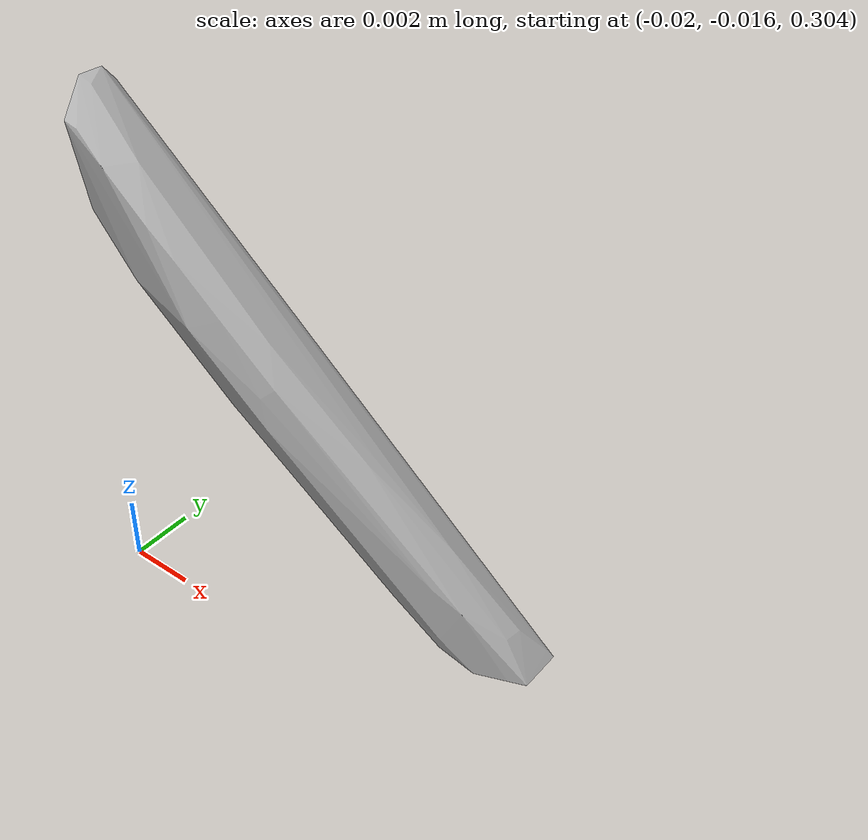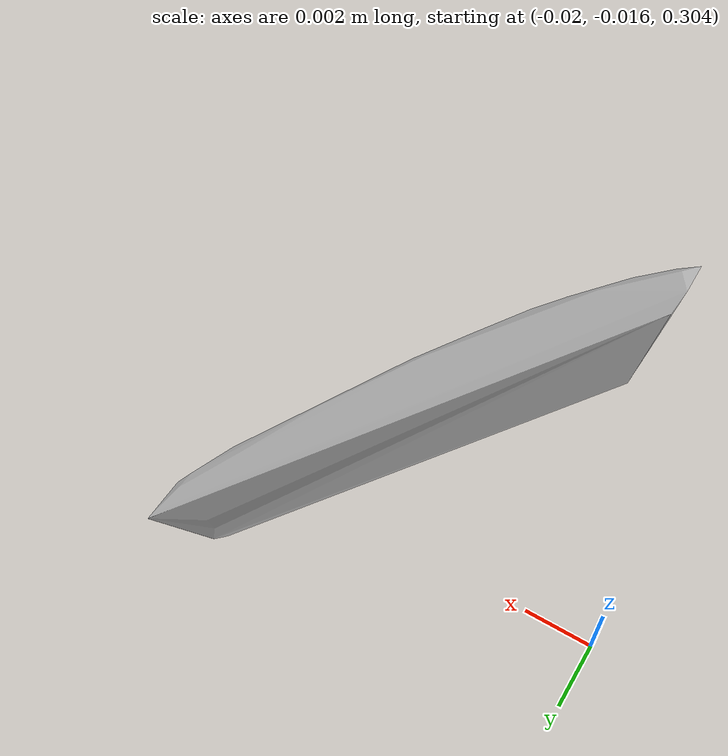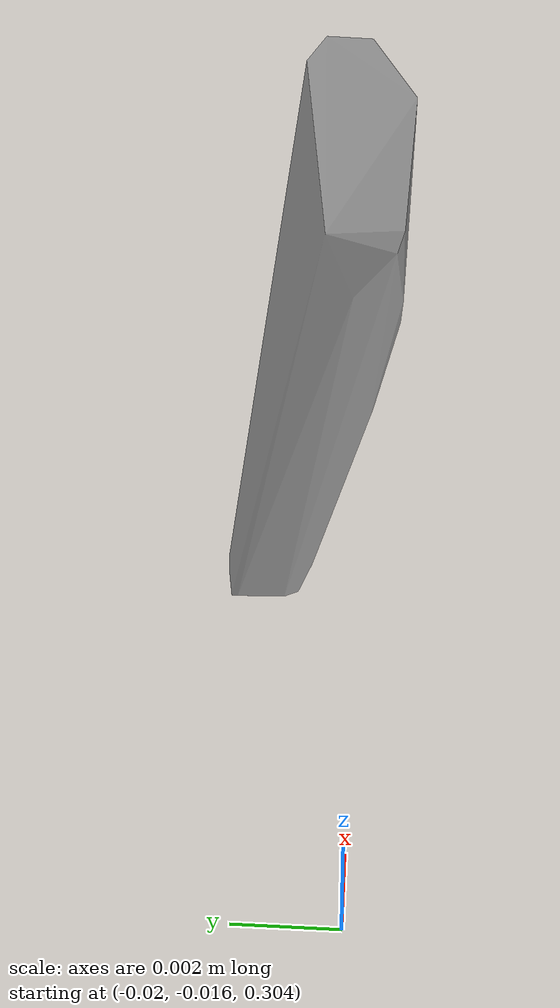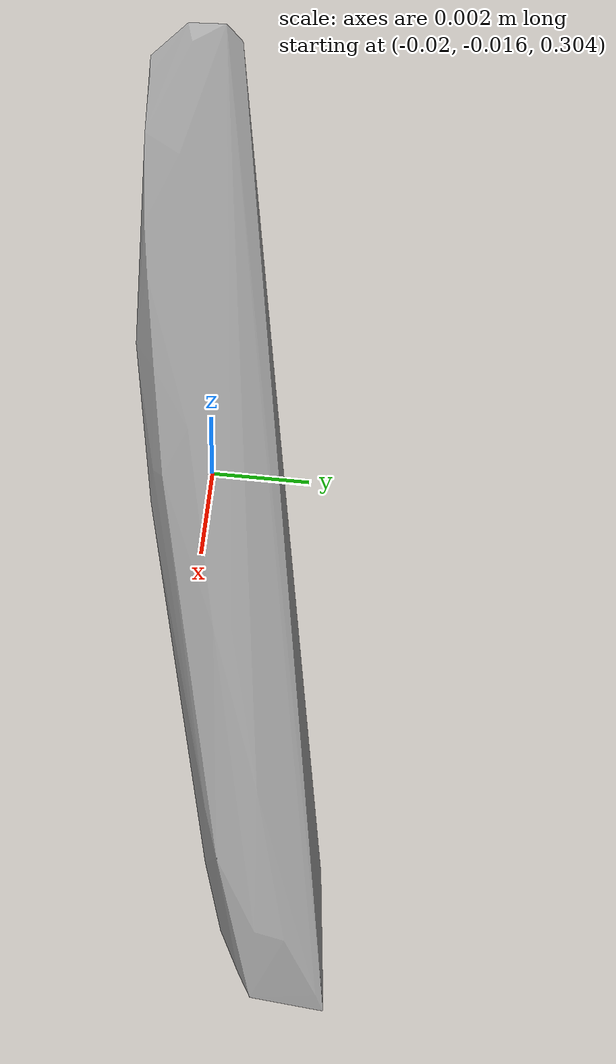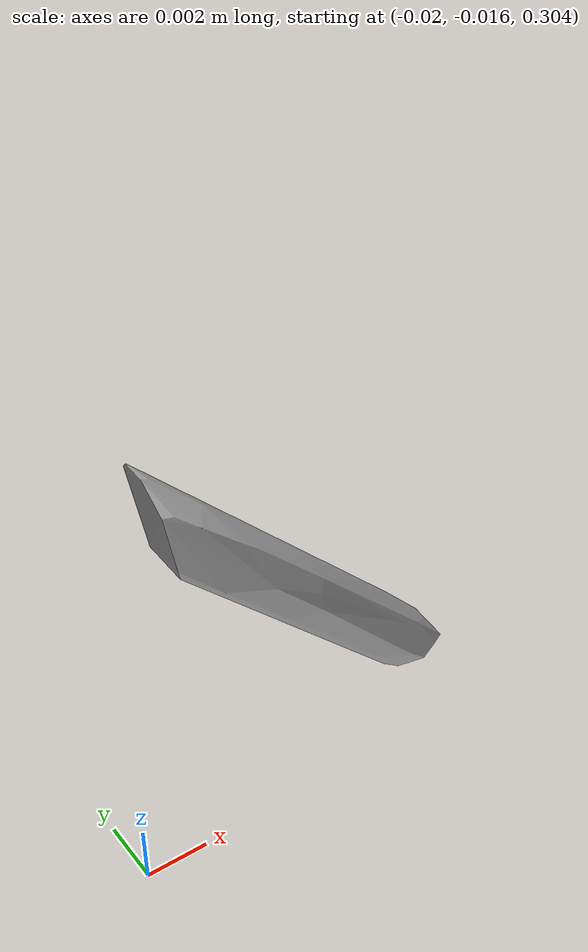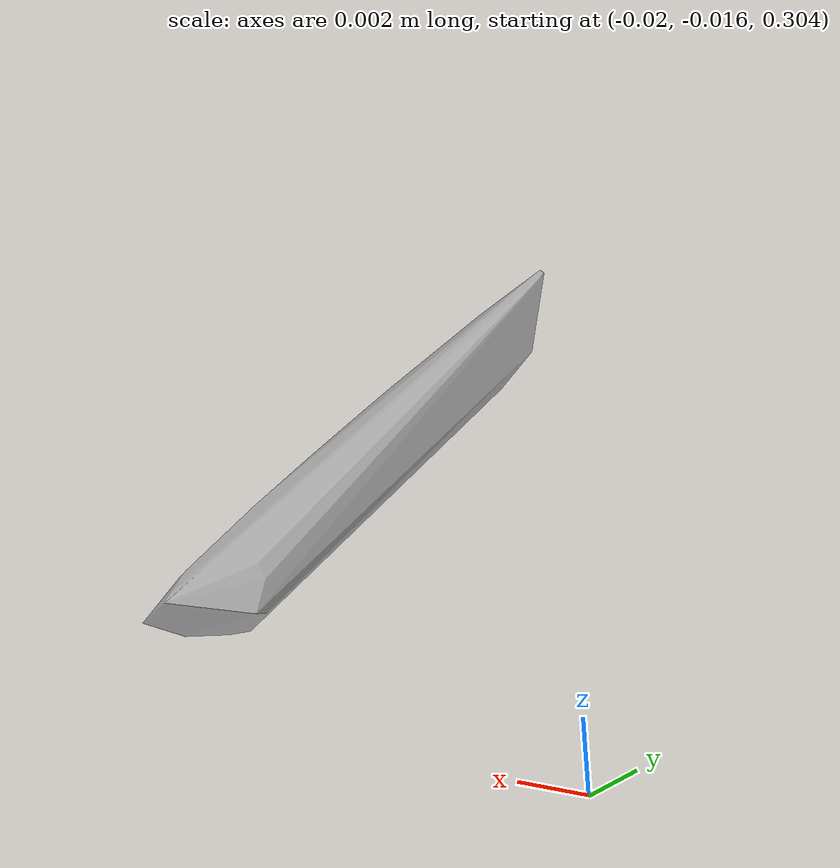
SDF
<?xml version="1.0"?>
<sdf version="1.7">
  <model name="vascular_partexport012">
    <link name="vascular_partexport012_body">
      <visual name="vascular_partexport012_visual">
        <geometry>
          <mesh>
            <uri>vascular_partexport012.obj</uri>
          </mesh>
        </geometry>
      </visual>
      <collision name="vascular_partexport012_collision">
        <geometry>
          <mesh>
            <uri>vascular_partexport012.obj</uri>
          </mesh>
        </geometry>
      </collision>
    </link>
    <frame name="vascular_partexport012_center">
      <pose relative_to="vascular_partexport012_body">0 0 0 0 0 0</pose>
    </frame>
  </model>
</sdf>
